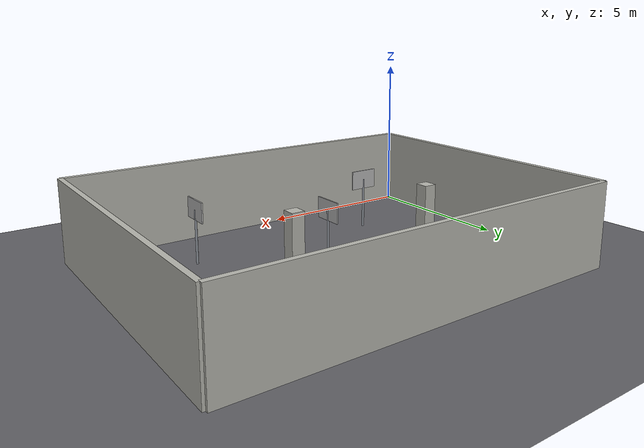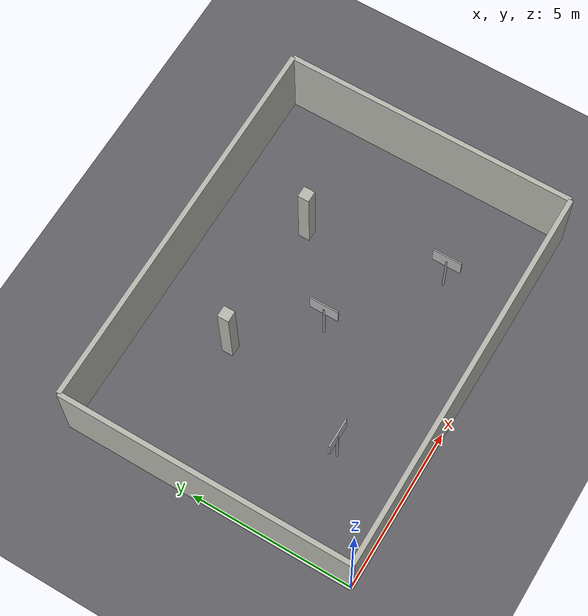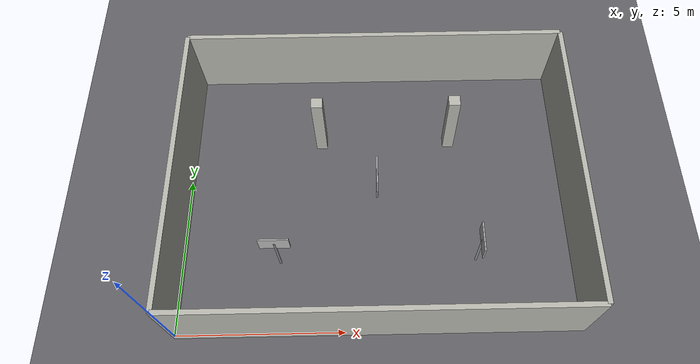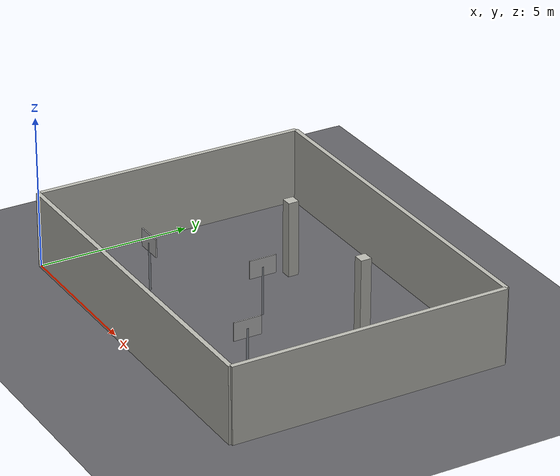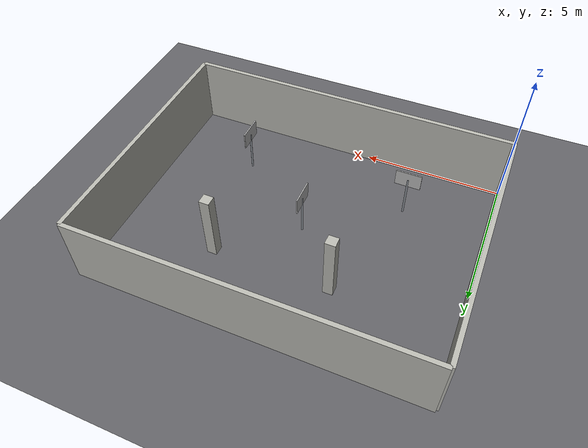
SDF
<sdf version="1.6">
 <world name="construction_lab_A">
  <model name="ground">
   <static>1</static>
   <link name="ground_link">
    <collision name="ground_col">
     <geometry><plane><normal>0 0 1</normal><size>60 60</size></plane></geometry>
     <surface><friction><ode><mu>0.9</mu><mu2>0.9</mu2></ode></friction></surface>
    </collision>
    <visual name="ground_vis">
     <geometry><plane><normal>0 0 1</normal><size>60 60</size></plane></geometry>
     <material><ambient>0.30 0.30 0.32 1</ambient><diffuse>0.38 0.38 0.40 1</diffuse></material>
    </visual>
   </link>
  </model>
  <model name="lab_shell">
   <static>1</static>
   <link name="wall_n">
    <pose>6 9 1.25 0 0 0</pose>
    <gravity>0</gravity>
    <collision name="wall_n_col"><geometry><box><size>12 0.15 2.5</size></box></geometry></collision>
    <visual name="wall_n_vis">
     <geometry><box><size>12 0.15 2.5</size></box></geometry>
     <material>
      <ambient>0.72 0.72 0.69 1</ambient>
      <diffuse>0.72 0.72 0.69 1</diffuse>
      <specular>0.1 0.1 0.1 1</specular>
     </material>
    </visual>
   </link>
   <link name="wall_s">
    <pose>6 0 1.25 0 0 0</pose>
    <gravity>0</gravity>
    <collision name="wall_s_col"><geometry><box><size>12 0.15 2.5</size></box></geometry></collision>
    <visual name="wall_s_vis">
     <geometry><box><size>12 0.15 2.5</size></box></geometry>
     <material>
      <ambient>0.72 0.72 0.69 1</ambient>
      <diffuse>0.72 0.72 0.69 1</diffuse>
      <specular>0.1 0.1 0.1 1</specular>
     </material>
    </visual>
   </link>
   <link name="wall_e">
    <pose>12 4.5 1.25 0 0 0</pose>
    <gravity>0</gravity>
    <collision name="wall_e_col"><geometry><box><size>0.15 9 2.5</size></box></geometry></collision>
    <visual name="wall_e_vis">
     <geometry><box><size>0.15 9 2.5</size></box></geometry>
     <material>
      <ambient>0.72 0.72 0.69 1</ambient>
      <diffuse>0.72 0.72 0.69 1</diffuse>
      <specular>0.1 0.1 0.1 1</specular>
     </material>
    </visual>
   </link>
   <link name="wall_w">
    <pose>0 4.5 1.25 0 0 0</pose>
    <gravity>0</gravity>
    <collision name="wall_w_col"><geometry><box><size>0.15 9 2.5</size></box></geometry></collision>
    <visual name="wall_w_vis">
     <geometry><box><size>0.15 9 2.5</size></box></geometry>
     <material>
      <ambient>0.72 0.72 0.69 1</ambient>
      <diffuse>0.72 0.72 0.69 1</diffuse>
      <specular>0.1 0.1 0.1 1</specular>
     </material>
    </visual>
   </link>
   <link name="column_0">
    <pose>4.2 6.4 1.25 0 0 0</pose>
    <gravity>0</gravity>
    <collision name="column_0_col"><geometry><box><size>0.35 0.35 2.5</size></box></geometry></collision>
    <visual name="column_0_vis">
     <geometry><box><size>0.35 0.35 2.5</size></box></geometry>
     <material>
      <ambient>0.72 0.72 0.69 1</ambient>
      <diffuse>0.72 0.72 0.69 1</diffuse>
      <specular>0.1 0.1 0.1 1</specular>
     </material>
    </visual>
   </link>
   <link name="column_1">
    <pose>8.4 6.4 1.25 0 0 0</pose>
    <gravity>0</gravity>
    <collision name="column_1_col"><geometry><box><size>0.35 0.35 2.5</size></box></geometry></collision>
    <visual name="column_1_vis">
     <geometry><box><size>0.35 0.35 2.5</size></box></geometry>
     <material>
      <ambient>0.72 0.72 0.69 1</ambient>
      <diffuse>0.72 0.72 0.69 1</diffuse>
      <specular>0.1 0.1 0.1 1</specular>
     </material>
    </visual>
   </link>
  </model>
  <model name="safety_signs">
   <static>1</static>
   <link name="SGN_A1_sign">
    <pose>3 2.2 1.6 0 0 1.5708</pose>
    <gravity>0</gravity>
    <collision name="SGN_A1_sign_col"><geometry><box><size>0.04 0.90 0.60</size></box></geometry></collision>
    <visual name="SGN_A1_sign_vis">
     <geometry><box><size>0.04 0.90 0.60</size></box></geometry>
     <material>
      <script>
       <uri>model://materials/scripts</uri>
       <uri>model://materials/textures</uri>
       <name>Go2Sim/SGN_A1</name>
      </script>
     </material>
    </visual>
   </link>
   <link name="SGN_A1_post">
    <pose>3 2.2 0.8 0 0 0</pose>
    <gravity>0</gravity>
    <collision name="SGN_A1_post_col">
     <geometry><cylinder><radius>0.035</radius><length>1.6</length></cylinder></geometry>
    </collision>
    <visual name="SGN_A1_post_vis">
     <geometry><cylinder><radius>0.035</radius><length>1.6</length></cylinder></geometry>
     <material>
      <ambient>0.55 0.57 0.6 1</ambient>
      <diffuse>0.55 0.57 0.6 1</diffuse>
      <specular>0.1 0.1 0.1 1</specular>
     </material>
    </visual>
   </link>
   <link name="SGN_A2_sign">
    <pose>6 4.4 1.6 0 0 3.1416</pose>
    <gravity>0</gravity>
    <collision name="SGN_A2_sign_col"><geometry><box><size>0.04 0.90 0.60</size></box></geometry></collision>
    <visual name="SGN_A2_sign_vis">
     <geometry><box><size>0.04 0.90 0.60</size></box></geometry>
     <material>
      <script>
       <uri>model://materials/scripts</uri>
       <uri>model://materials/textures</uri>
       <name>Go2Sim/SGN_A2</name>
      </script>
     </material>
    </visual>
   </link>
   <link name="SGN_A2_post">
    <pose>6 4.4 0.8 0 0 0</pose>
    <gravity>0</gravity>
    <collision name="SGN_A2_post_col">
     <geometry><cylinder><radius>0.035</radius><length>1.6</length></cylinder></geometry>
    </collision>
    <visual name="SGN_A2_post_vis">
     <geometry><cylinder><radius>0.035</radius><length>1.6</length></cylinder></geometry>
     <material>
      <ambient>0.55 0.57 0.6 1</ambient>
      <diffuse>0.55 0.57 0.6 1</diffuse>
      <specular>0.1 0.1 0.1 1</specular>
     </material>
    </visual>
   </link>
   <link name="SGN_A3_sign">
    <pose>9 2.2 1.6 0 0 3.1416</pose>
    <gravity>0</gravity>
    <collision name="SGN_A3_sign_col"><geometry><box><size>0.04 0.90 0.60</size></box></geometry></collision>
    <visual name="SGN_A3_sign_vis">
     <geometry><box><size>0.04 0.90 0.60</size></box></geometry>
     <material>
      <script>
       <uri>model://materials/scripts</uri>
       <uri>model://materials/textures</uri>
       <name>Go2Sim/SGN_A3</name>
      </script>
     </material>
    </visual>
   </link>
   <link name="SGN_A3_post">
    <pose>9 2.2 0.8 0 0 0</pose>
    <gravity>0</gravity>
    <collision name="SGN_A3_post_col">
     <geometry><cylinder><radius>0.035</radius><length>1.6</length></cylinder></geometry>
    </collision>
    <visual name="SGN_A3_post_vis">
     <geometry><cylinder><radius>0.035</radius><length>1.6</length></cylinder></geometry>
     <material>
      <ambient>0.55 0.57 0.6 1</ambient>
      <diffuse>0.55 0.57 0.6 1</diffuse>
      <specular>0.1 0.1 0.1 1</specular>
     </material>
    </visual>
   </link>
  </model>
 </world>
</sdf>
